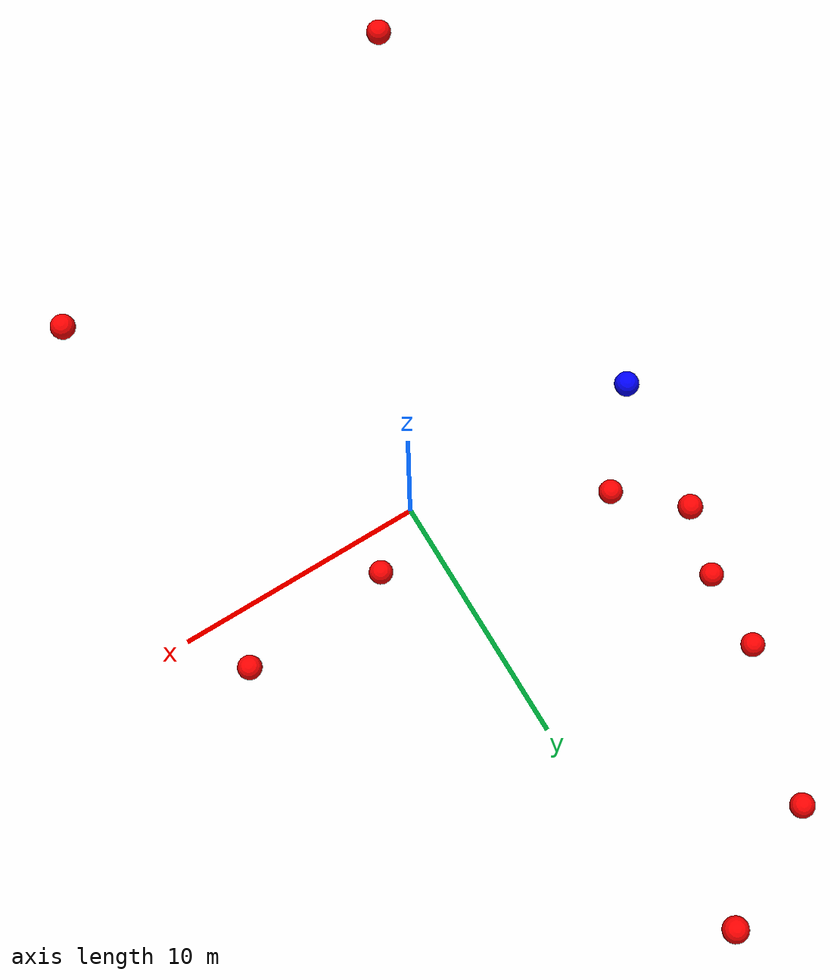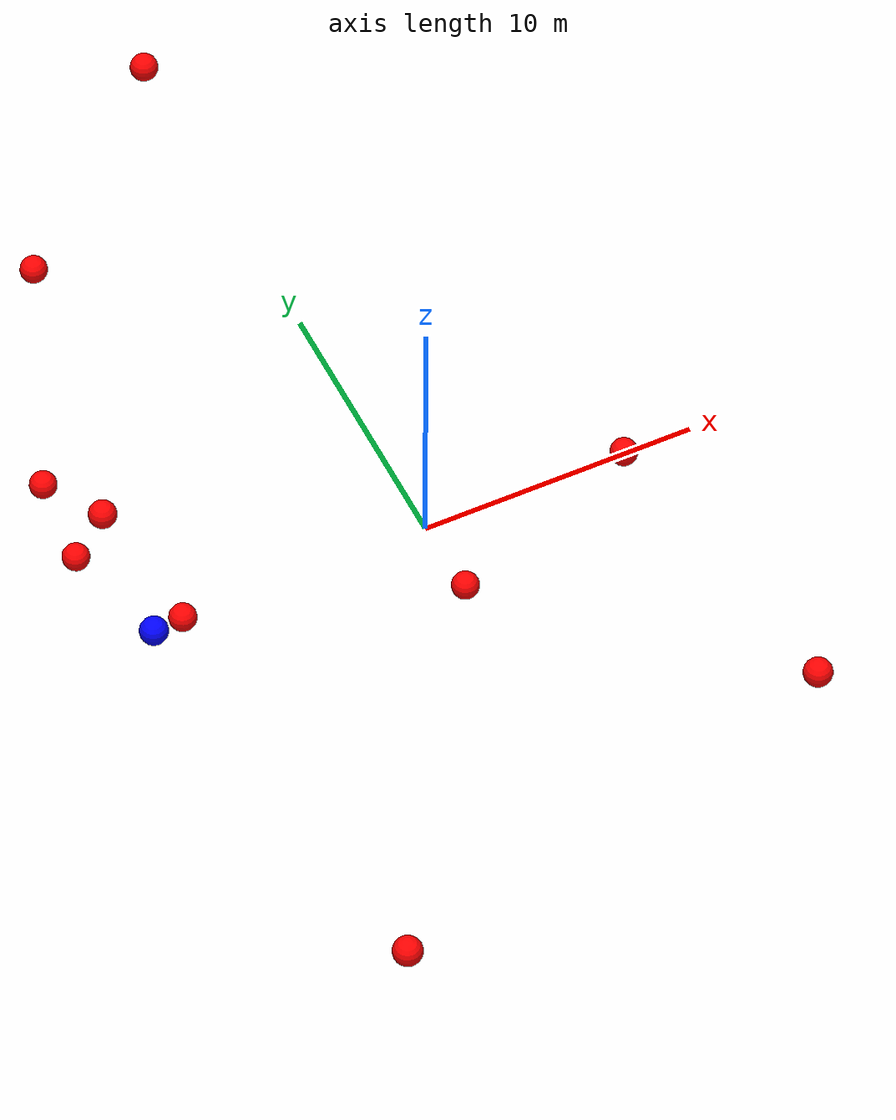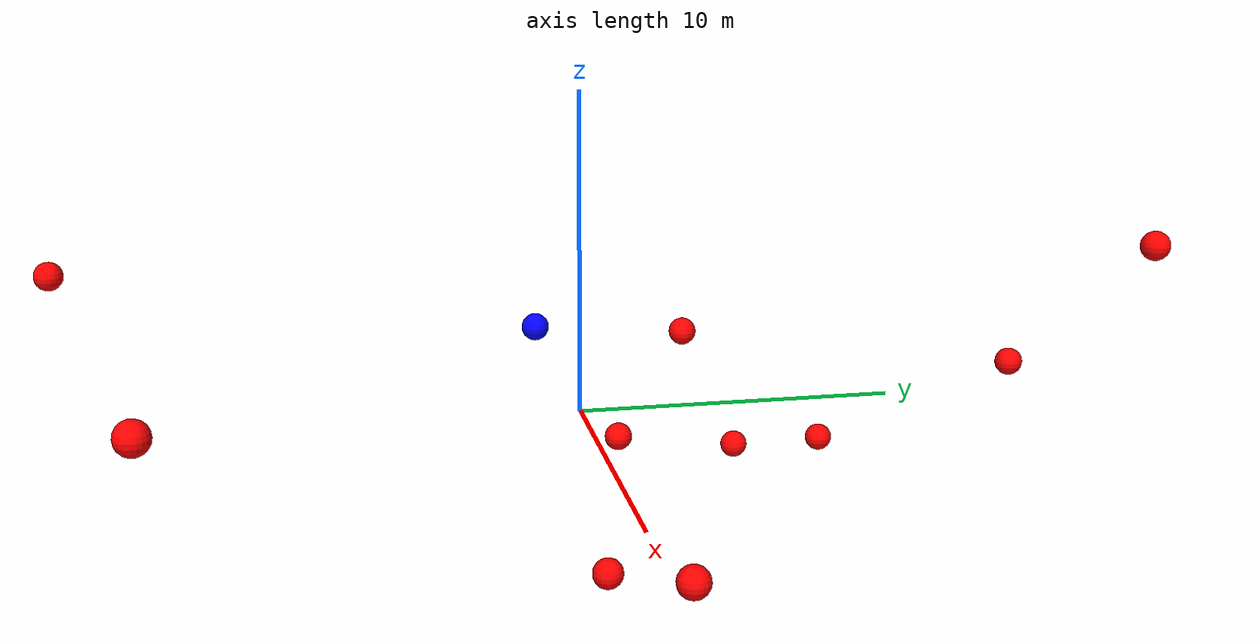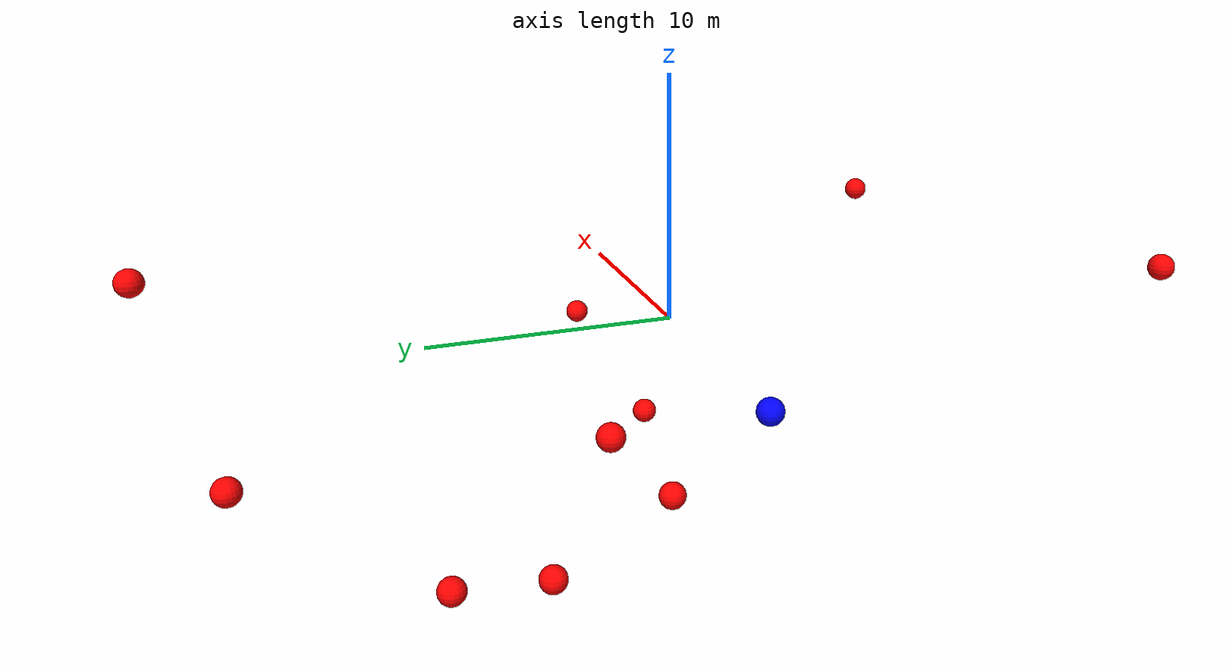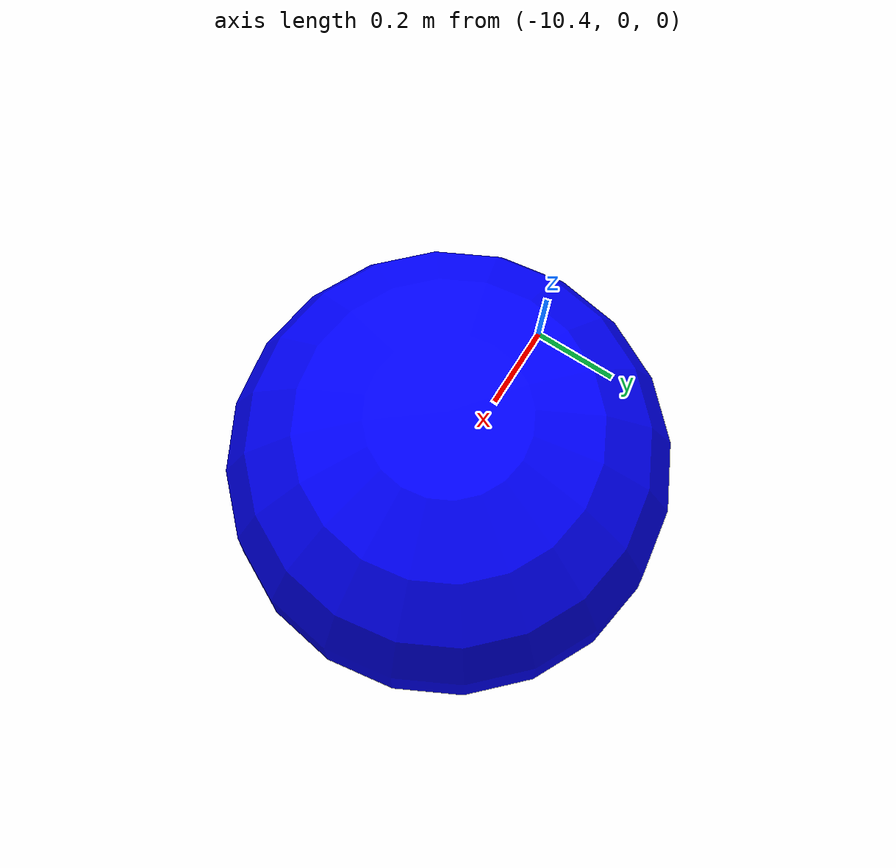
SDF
<?xml version="1.0" ?>
<sdf version="1.8">
    <world name="3d_world">
        <physics name="1ms" type="ode">
            <max_step_size>0.001</max_step_size>
            <real_time_factor>1.0</real_time_factor>
            <real_time_update_rate>1000.0</real_time_update_rate>
        </physics>
        <gravity>0 0 0</gravity>

        <plugin
            filename="gz-sim-physics-system"
            name="gz::sim::v8::systems::Physics">
        </plugin>
        <plugin
            filename="libignition-gazebo-user-commands-system.so"
            name="ignition::gazebo::systems::UserCommands">
        </plugin>
        <plugin
            filename="gz-sim-scene-broadcaster-system"
            name="gz::sim::systems::SceneBroadcaster">
        </plugin>
        <plugin
            filename="gz-sim-sensors-system"
            name="gz::sim::systems::Sensors">
            <render_engine>ogre2</render_engine>
        </plugin>

        <light type="directional" name="sun">
            <cast_shadows>true</cast_shadows>
            <pose>0 0 10 0 0 0</pose>
            <diffuse>0.8 0.8 0.8 1</diffuse>
            <specular>0.2 0.2 0.2 1</specular>
            <attenuation>
                <range>1000</range>
                <constant>0.9</constant>
                <linear>0.01</linear>
                <quadratic>0.001</quadratic>
            </attenuation>
            <direction>-0.5 0.1 -0.9</direction>
        </light>

        <!-- AGENTE -->
        <model name='agente' canonical_link='chassis'>
            <pose relative_to='world'>-10.0 0 0.0 0 0 0</pose>
            <link name='chassis'>
                <pose relative_to='__model__'>0.0 0 0.0 0 0 0</pose>
                <inertial>
                    <mass>1.14395</mass>
                    <inertia>
                        <ixx>0.095329</ixx>
                        <ixy>0</ixy>
                        <ixz>0</ixz>
                        <iyy>0.381317</iyy>
                        <iyz>0</iyz>
                        <izz>0.476646</izz>
                    </inertia>
                </inertial>
                <visual name='visual'>
                    <geometry>
                        <sphere>
                            <radius>0.5</radius>
                        </sphere>
                    </geometry>
                    <material>
                        <ambient>0.0 0.0 1.0 1</ambient>
                        <diffuse>0.0 0.0 1.0 1</diffuse>
                        <specular>0.0 0.0 1.0 1</specular>
                    </material>
                </visual>
                <collision name='collision'>
                    <geometry>
                        <sphere>
                            <radius>0.5</radius>
                        </sphere>
                    </geometry>
                </collision>
                <enable_gravity>false</enable_gravity>
            </link>

            <link name='lidar_link'>
                <pose relative_to='chassis'>0.0 0 0.1 0 0 0</pose>
                <inertial>
                    <mass>0.1</mass>
                    <inertia>
                        <ixx>0.000166667</ixx>
                        <iyy>0.000166667</iyy>
                        <izz>0.000166667</izz>
                    </inertia>
                </inertial>
                <collision name='collision'>
                    <geometry>
                        <cylinder>
                            <radius>0.05</radius>
                            <length>0.1</length>
                        </cylinder>
                    </geometry>
                </collision>
                <visual name='visual'>
                    <geometry>
                        <cylinder>
                            <radius>0.05</radius>
                            <length>0.1</length>
                        </cylinder>
                    </geometry>
                    <material>
                        <ambient>0.0 1.0 0.0 1</ambient>
                        <diffuse>0.0 1.0 0.0 1</diffuse>
                        <specular>0.0 1.0 0.0 1</specular>
                    </material>
                </visual>
                <sensor name="lidar" type="gpu_lidar">
                    <topic>scan</topic>
                    <update_rate>10</update_rate>
                    <lidar>
                        <scan>
                            <horizontal>
                                <samples>5000</samples>
                                <resolution>1</resolution>
                                <min_angle>-3.14159</min_angle>
                                <max_angle>3.14159</max_angle>
                            </horizontal>
                        </scan>
                        <range>
                            <min>0.1</min>
                            <max>10.0</max>
                            <resolution>0.01</resolution>
                        </range>
                    </lidar>
                    <visualize>true</visualize>
                    <always_on>true</always_on>
                    <update_rate>10</update_rate>
                    <pose_frame>lidar</pose_frame>
                </sensor>
                <enable_gravity>false</enable_gravity>
            </link>

            <joint name="lidar_joint" type="fixed">
                <parent>chassis</parent>
                <child>lidar_link</child>
            </joint>

            <plugin
                filename="ignition-gazebo-joint-state-publisher-system"
                name="ignition::gazebo::systems::JointStatePublisher">
            </plugin>
            <plugin
                filename="ignition-gazebo-odometry-publisher-system"
                name="ignition::gazebo::systems::OdometryPublisher">
                <dimensions>3</dimensions>
            </plugin>
            <plugin
                filename="ignition-gazebo-velocity-control-system"
                name="ignition::gazebo::systems::VelocityControl">
                <initial_linear>0.0 0 0</initial_linear>
                <initial_angular>0 0 0.0</initial_angular>
            </plugin>
            <plugin
                filename="libignition-gazebo-pose-publisher-system.so"
                name="ignition::gazebo::systems::PosePublisher">
                <topic>/agente/pose</topic>
                <frame_id>agente</frame_id>
                <update_rate>30</update_rate>
            </plugin>
        </model>

        <!-- OBSTACLE 1 -->
        <model name='obstacle_1' canonical_link='obstacle'>
            <static>false</static>
            <pose relative_to='world'>-1.42 19.81 4.17 0 0 0</pose>
            <link name='obstacle'>
                <pose relative_to='__model__'>0.0 0 0.0 0 0 0</pose>
                <visual name='visual'>
                    <geometry>
                        <sphere>
                            <radius>0.50</radius>
                        </sphere>
                    </geometry>
                    <material>
                        <ambient>1.0 0.0 0.0 1</ambient>
                        <diffuse>1.0 0.0 0.0 1</diffuse>
                        <specular>1.0 0.0 0.0 1</specular>
                    </material>
                </visual>
                <collision name='collision'>
                    <geometry>
                        <sphere>
                            <radius>0.50</radius>
                        </sphere>
                    </geometry>
                </collision>
                <enable_gravity>false</enable_gravity>
            </link>

            <plugin
                filename="ignition-gazebo-velocity-control-system"
                name="ignition::gazebo::systems::VelocityControl">
                <initial_linear>0.62 -1.86 -0.39</initial_linear>
                <initial_angular>0 0 0</initial_angular>
            </plugin>

            <plugin
                filename="ignition-gazebo-odometry-publisher-system"
                name="ignition::gazebo::systems::OdometryPublisher">
                <dimensions>3</dimensions>
            </plugin>
        </model>

        <!-- OBSTACLE 2 -->
        <model name='obstacle_2' canonical_link='obstacle'>
            <static>false</static>
            <pose relative_to='world'>-9.56 10.95 -4.83 0 0 0</pose>
            <link name='obstacle'>
                <pose relative_to='__model__'>0.0 0 0.0 0 0 0</pose>
                <visual name='visual'>
                    <geometry>
                        <sphere>
                            <radius>0.50</radius>
                        </sphere>
                    </geometry>
                    <material>
                        <ambient>1.0 0.0 0.0 1</ambient>
                        <diffuse>1.0 0.0 0.0 1</diffuse>
                        <specular>1.0 0.0 0.0 1</specular>
                    </material>
                </visual>
                <collision name='collision'>
                    <geometry>
                        <sphere>
                            <radius>0.50</radius>
                        </sphere>
                    </geometry>
                </collision>
                <enable_gravity>false</enable_gravity>
            </link>

            <plugin
                filename="ignition-gazebo-velocity-control-system"
                name="ignition::gazebo::systems::VelocityControl">
                <initial_linear>1.51 -1.20 0.53</initial_linear>
                <initial_angular>0 0 0</initial_angular>
            </plugin>

            <plugin
                filename="ignition-gazebo-odometry-publisher-system"
                name="ignition::gazebo::systems::OdometryPublisher">
                <dimensions>3</dimensions>
            </plugin>
        </model>

        <!-- OBSTACLE 3 -->
        <model name='obstacle_3' canonical_link='obstacle'>
            <static>false</static>
            <pose relative_to='world'>-9.48 5.47 -0.29 0 0 0</pose>
            <link name='obstacle'>
                <pose relative_to='__model__'>0.0 0 0.0 0 0 0</pose>
                <visual name='visual'>
                    <geometry>
                        <sphere>
                            <radius>0.50</radius>
                        </sphere>
                    </geometry>
                    <material>
                        <ambient>1.0 0.0 0.0 1</ambient>
                        <diffuse>1.0 0.0 0.0 1</diffuse>
                        <specular>1.0 0.0 0.0 1</specular>
                    </material>
                </visual>
                <collision name='collision'>
                    <geometry>
                        <sphere>
                            <radius>0.50</radius>
                        </sphere>
                    </geometry>
                </collision>
                <enable_gravity>false</enable_gravity>
            </link>

            <plugin
                filename="ignition-gazebo-velocity-control-system"
                name="ignition::gazebo::systems::VelocityControl">
                <initial_linear>1.47 -1.36 0.07</initial_linear>
                <initial_angular>0 0 0</initial_angular>
            </plugin>

            <plugin
                filename="ignition-gazebo-odometry-publisher-system"
                name="ignition::gazebo::systems::OdometryPublisher">
                <dimensions>3</dimensions>
            </plugin>
        </model>

        <!-- OBSTACLE 4 -->
        <model name='obstacle_4' canonical_link='obstacle'>
            <static>false</static>
            <pose relative_to='world'>8.01 -12.69 2.63 0 0 0</pose>
            <link name='obstacle'>
                <pose relative_to='__model__'>0.0 0 0.0 0 0 0</pose>
                <visual name='visual'>
                    <geometry>
                        <sphere>
                            <radius>0.50</radius>
                        </sphere>
                    </geometry>
                    <material>
                        <ambient>1.0 0.0 0.0 1</ambient>
                        <diffuse>1.0 0.0 0.0 1</diffuse>
                        <specular>1.0 0.0 0.0 1</specular>
                    </material>
                </visual>
                <collision name='collision'>
                    <geometry>
                        <sphere>
                            <radius>0.50</radius>
                        </sphere>
                    </geometry>
                </collision>
                <enable_gravity>false</enable_gravity>
            </link>

            <plugin
                filename="ignition-gazebo-velocity-control-system"
                name="ignition::gazebo::systems::VelocityControl">
                <initial_linear>-0.88 1.76 -0.36</initial_linear>
                <initial_angular>0 0 0</initial_angular>
            </plugin>

            <plugin
                filename="ignition-gazebo-odometry-publisher-system"
                name="ignition::gazebo::systems::OdometryPublisher">
                <dimensions>3</dimensions>
            </plugin>
        </model>

        <!-- OBSTACLE 5 -->
        <model name='obstacle_5' canonical_link='obstacle'>
            <static>false</static>
            <pose relative_to='world'>-7.85 2.74 -3.72 0 0 0</pose>
            <link name='obstacle'>
                <pose relative_to='__model__'>0.0 0 0.0 0 0 0</pose>
                <visual name='visual'>
                    <geometry>
                        <sphere>
                            <radius>0.50</radius>
                        </sphere>
                    </geometry>
                    <material>
                        <ambient>1.0 0.0 0.0 1</ambient>
                        <diffuse>1.0 0.0 0.0 1</diffuse>
                        <specular>1.0 0.0 0.0 1</specular>
                    </material>
                </visual>
                <collision name='collision'>
                    <geometry>
                        <sphere>
                            <radius>0.50</radius>
                        </sphere>
                    </geometry>
                </collision>
                <enable_gravity>false</enable_gravity>
            </link>

            <plugin
                filename="ignition-gazebo-velocity-control-system"
                name="ignition::gazebo::systems::VelocityControl">
                <initial_linear>1.88 -0.41 0.55</initial_linear>
                <initial_angular>0 0 0</initial_angular>
            </plugin>

            <plugin
                filename="ignition-gazebo-odometry-publisher-system"
                name="ignition::gazebo::systems::OdometryPublisher">
                <dimensions>3</dimensions>
            </plugin>
        </model>

        <!-- OBSTACLE 6 -->
        <model name='obstacle_6' canonical_link='obstacle'>
            <static>false</static>
            <pose relative_to='world'>8.40 1.66 -2.22 0 0 0</pose>
            <link name='obstacle'>
                <pose relative_to='__model__'>0.0 0 0.0 0 0 0</pose>
                <visual name='visual'>
                    <geometry>
                        <sphere>
                            <radius>0.50</radius>
                        </sphere>
                    </geometry>
                    <material>
                        <ambient>1.0 0.0 0.0 1</ambient>
                        <diffuse>1.0 0.0 0.0 1</diffuse>
                        <specular>1.0 0.0 0.0 1</specular>
                    </material>
                </visual>
                <collision name='collision'>
                    <geometry>
                        <sphere>
                            <radius>0.50</radius>
                        </sphere>
                    </geometry>
                </collision>
                <enable_gravity>false</enable_gravity>
            </link>

            <plugin
                filename="ignition-gazebo-velocity-control-system"
                name="ignition::gazebo::systems::VelocityControl">
                <initial_linear>-0.56 -0.28 0.37</initial_linear>
                <initial_angular>0 0 0</initial_angular>
            </plugin>

            <plugin
                filename="ignition-gazebo-odometry-publisher-system"
                name="ignition::gazebo::systems::OdometryPublisher">
                <dimensions>3</dimensions>
            </plugin>
        </model>

        <!-- OBSTACLE 7 -->
        <model name='obstacle_7' canonical_link='obstacle'>
            <static>false</static>
            <pose relative_to='world'>-8.76 -16.93 2.94 0 0 0</pose>
            <link name='obstacle'>
                <pose relative_to='__model__'>0.0 0 0.0 0 0 0</pose>
                <visual name='visual'>
                    <geometry>
                        <sphere>
                            <radius>0.50</radius>
                        </sphere>
                    </geometry>
                    <material>
                        <ambient>1.0 0.0 0.0 1</ambient>
                        <diffuse>1.0 0.0 0.0 1</diffuse>
                        <specular>1.0 0.0 0.0 1</specular>
                    </material>
                </visual>
                <collision name='collision'>
                    <geometry>
                        <sphere>
                            <radius>0.50</radius>
                        </sphere>
                    </geometry>
                </collision>
                <enable_gravity>false</enable_gravity>
            </link>

            <plugin
                filename="ignition-gazebo-velocity-control-system"
                name="ignition::gazebo::systems::VelocityControl">
                <initial_linear>0.66 1.86 -0.32</initial_linear>
                <initial_angular>0 0 0</initial_angular>
            </plugin>

            <plugin
                filename="ignition-gazebo-odometry-publisher-system"
                name="ignition::gazebo::systems::OdometryPublisher">
                <dimensions>3</dimensions>
            </plugin>
        </model>

        <!-- OBSTACLE 8 -->
        <model name='obstacle_8' canonical_link='obstacle'>
            <static>false</static>
            <pose relative_to='world'>-6.96 17.40 -1.36 0 0 0</pose>
            <link name='obstacle'>
                <pose relative_to='__model__'>0.0 0 0.0 0 0 0</pose>
                <visual name='visual'>
                    <geometry>
                        <sphere>
                            <radius>0.50</radius>
                        </sphere>
                    </geometry>
                    <material>
                        <ambient>1.0 0.0 0.0 1</ambient>
                        <diffuse>1.0 0.0 0.0 1</diffuse>
                        <specular>1.0 0.0 0.0 1</specular>
                    </material>
                </visual>
                <collision name='collision'>
                    <geometry>
                        <sphere>
                            <radius>0.50</radius>
                        </sphere>
                    </geometry>
                </collision>
                <enable_gravity>false</enable_gravity>
            </link>

            <plugin
                filename="ignition-gazebo-velocity-control-system"
                name="ignition::gazebo::systems::VelocityControl">
                <initial_linear>1.05 -1.70 0.13</initial_linear>
                <initial_angular>0 0 0</initial_angular>
            </plugin>

            <plugin
                filename="ignition-gazebo-odometry-publisher-system"
                name="ignition::gazebo::systems::OdometryPublisher">
                <dimensions>3</dimensions>
            </plugin>
        </model>

        <!-- OBSTACLE 9 -->
        <model name='obstacle_9' canonical_link='obstacle'>
            <static>false</static>
            <pose relative_to='world'>-9.76 7.63 -4.98 0 0 0</pose>
            <link name='obstacle'>
                <pose relative_to='__model__'>0.0 0 0.0 0 0 0</pose>
                <visual name='visual'>
                    <geometry>
                        <sphere>
                            <radius>0.50</radius>
                        </sphere>
                    </geometry>
                    <material>
                        <ambient>1.0 0.0 0.0 1</ambient>
                        <diffuse>1.0 0.0 0.0 1</diffuse>
                        <specular>1.0 0.0 0.0 1</specular>
                    </material>
                </visual>
                <collision name='collision'>
                    <geometry>
                        <sphere>
                            <radius>0.50</radius>
                        </sphere>
                    </geometry>
                </collision>
                <enable_gravity>false</enable_gravity>
            </link>

            <plugin
                filename="ignition-gazebo-velocity-control-system"
                name="ignition::gazebo::systems::VelocityControl">
                <initial_linear>1.73 -0.85 0.55</initial_linear>
                <initial_angular>0 0 0</initial_angular>
            </plugin>

            <plugin
                filename="ignition-gazebo-odometry-publisher-system"
                name="ignition::gazebo::systems::OdometryPublisher">
                <dimensions>3</dimensions>
            </plugin>
        </model>

        <!-- OBSTACLE 10 -->
        <model name='obstacle_10' canonical_link='obstacle'>
            <static>false</static>
            <pose relative_to='world'>1.80 0.55 -4.77 0 0 0</pose>
            <link name='obstacle'>
                <pose relative_to='__model__'>0.0 0 0.0 0 0 0</pose>
                <visual name='visual'>
                    <geometry>
                        <sphere>
                            <radius>0.50</radius>
                        </sphere>
                    </geometry>
                    <material>
                        <ambient>1.0 0.0 0.0 1</ambient>
                        <diffuse>1.0 0.0 0.0 1</diffuse>
                        <specular>1.0 0.0 0.0 1</specular>
                    </material>
                </visual>
                <collision name='collision'>
                    <geometry>
                        <sphere>
                            <radius>0.50</radius>
                        </sphere>
                    </geometry>
                </collision>
                <enable_gravity>false</enable_gravity>
            </link>

            <plugin
                filename="ignition-gazebo-velocity-control-system"
                name="ignition::gazebo::systems::VelocityControl">
                <initial_linear>0.40 -0.10 0.85</initial_linear>
                <initial_angular>0 0 0</initial_angular>
            </plugin>

            <plugin
                filename="ignition-gazebo-odometry-publisher-system"
                name="ignition::gazebo::systems::OdometryPublisher">
                <dimensions>3</dimensions>
            </plugin>
        </model>

    </world>
</sdf>
